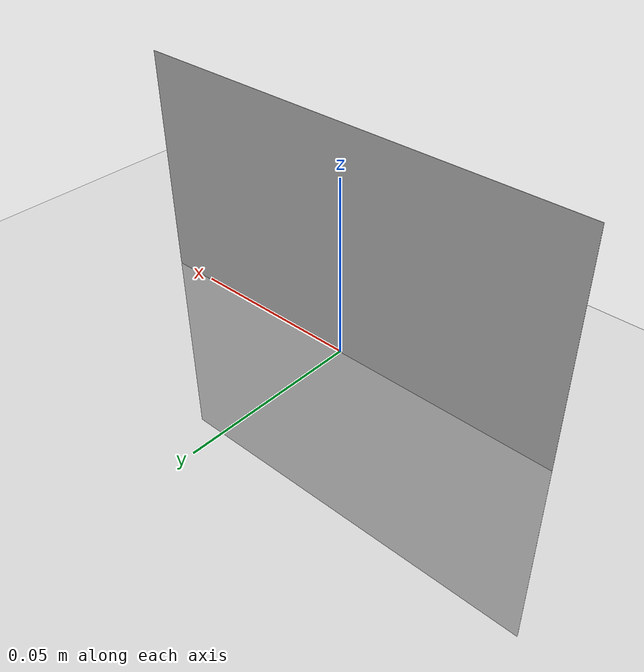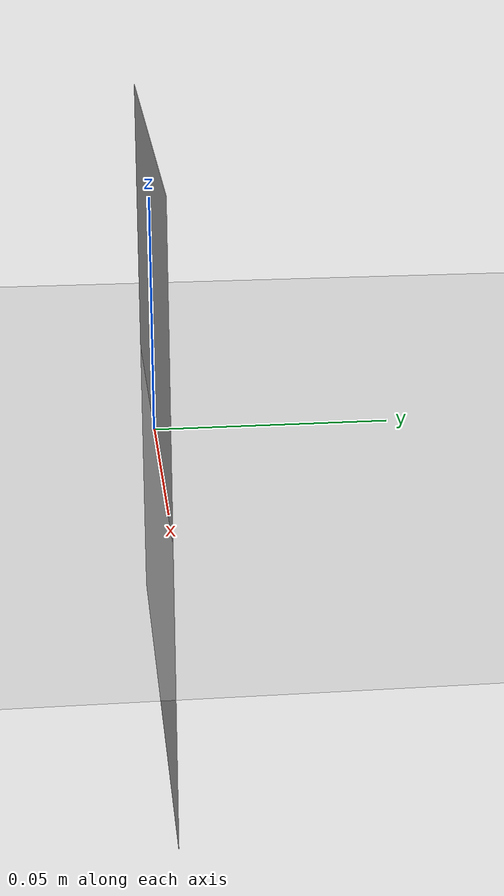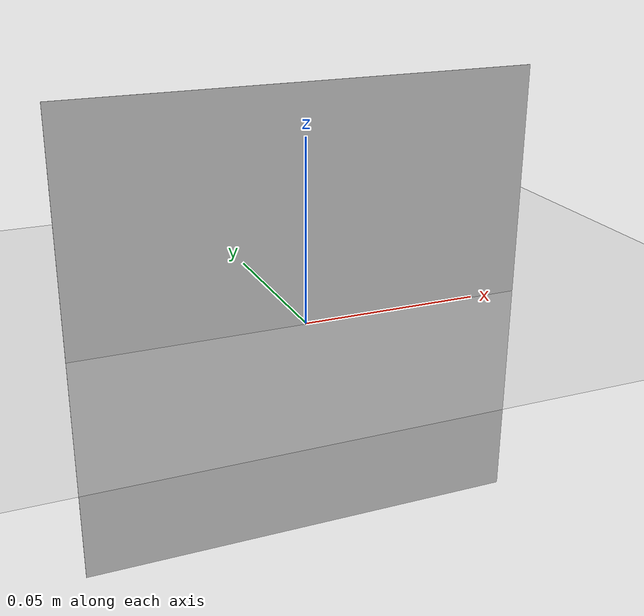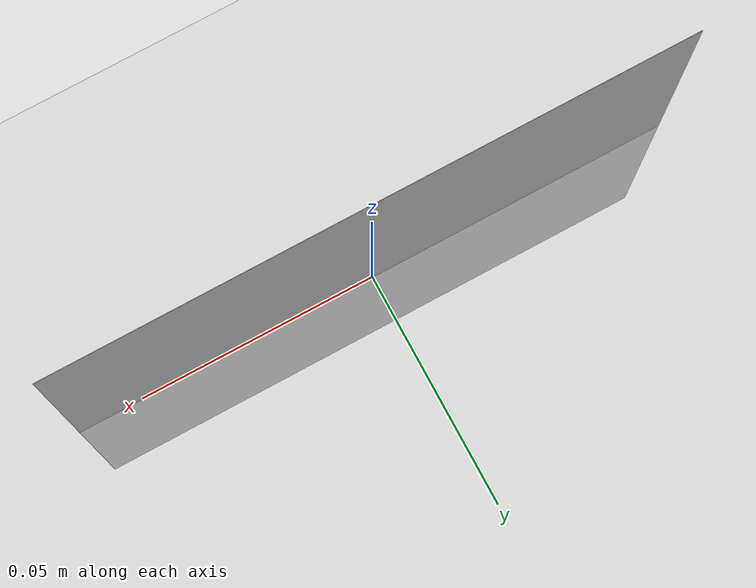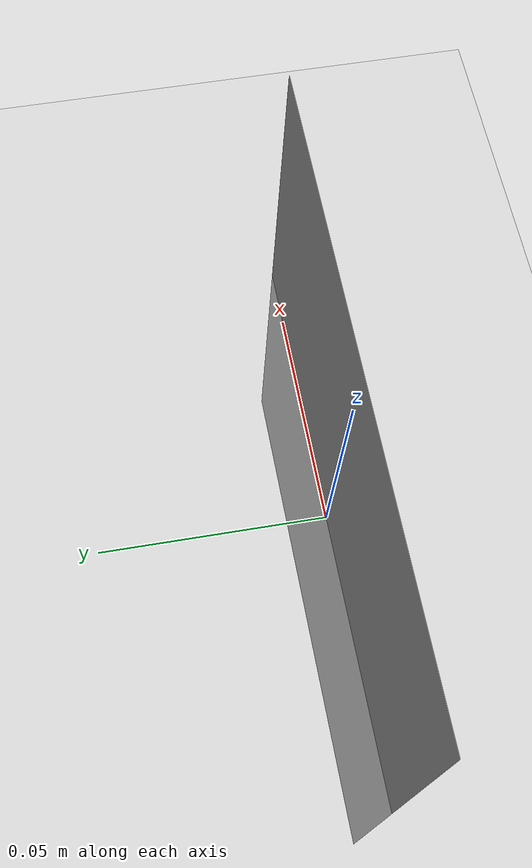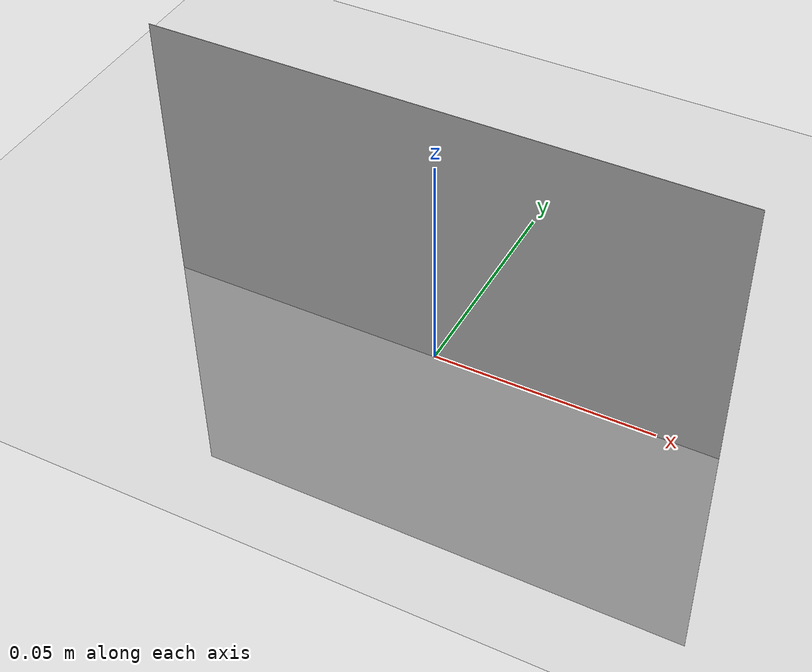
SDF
<sdf version="1.4">
 <world name="default">
  <light name="sun" type="directional">
   <pose>0 0 10 0 -0 0</pose>
   <diffuse>0.8 0.8 0.8 1</diffuse>
   <specular>0.2 0.2 0.2 1</specular>
   <attenuation>
    <range>1000</range>
    <constant>0.9</constant>
    <linear>0.01</linear>
    <quadratic>0.001</quadratic>
   </attenuation>
   <direction>-0.5 0.1 -0.9</direction>
  </light>
  <model name="ground_plane">
   <static>1</static>
   <link name="link">
    <collision name="collision">
     <geometry><plane><normal>0 0 1</normal><size>100 100</size></plane></geometry>
     <surface><friction><ode><mu>100</mu><mu2>50</mu2></ode></friction></surface>
    </collision>
    <visual name="visual">
     <cast_shadows>0</cast_shadows>
     <geometry><plane><normal>0 0 1</normal><size>100 100</size></plane></geometry>
     <material>
      <script><uri>file://media/materials/scripts/gazebo.material</uri><name>Gazebo/Grey</name></script>
     </material>
    </visual>
    <velocity_decay><linear>0</linear><angular>0</angular></velocity_decay>
   </link>
  </model>
  <physics type="ode">
   <max_step_size>0.001</max_step_size>
   <real_time_factor>1</real_time_factor>
   <real_time_update_rate>1000</real_time_update_rate>
   <gravity>0 0 -9.8</gravity>
  </physics>
  <scene><ambient>0.4 0.4 0.4 1</ambient><background>0.7 0.7 0.7 1</background><shadows>1</shadows></scene>
  <spherical_coordinates>
   <surface_model>EARTH_WGS84</surface_model>
   <latitude_deg>0</latitude_deg>
   <longitude_deg>0</longitude_deg>
   <elevation>0</elevation>
   <heading_deg>0</heading_deg>
  </spherical_coordinates>
  <model name="alvar_tag_0">
   <link name="link">
    <collision name="collision"><geometry><box><size>0.127 0.0001 0.127</size></box></geometry></collision>
    <visual name="visual">
     <geometry><box><size>0.127 0.0001 0.127</size></box></geometry>
     <material>
      <script>
       <uri>model://alvar_tag/materials/scripts</uri>
       <uri>model://alvar_tag/materials/textures</uri>
       <name>AlvarTag/Tag_0</name>
      </script>
     </material>
    </visual>
   </link>
   <static>1</static>
  </model>
  <model name="alvar_tag_1">
   <link name="link">
    <collision name="collision"><geometry><box><size>0.127 0.0001 0.127</size></box></geometry></collision>
    <visual name="visual">
     <geometry><box><size>0.127 0.0001 0.127</size></box></geometry>
     <material>
      <script>
       <uri>model://alvar_tag/materials/scripts</uri>
       <uri>model://alvar_tag/materials/textures</uri>
       <name>AlvarTag/Tag_1</name>
      </script>
     </material>
    </visual>
   </link>
   <static>1</static>
  </model>
  <model name="alvar_tag_2">
   <link name="link">
    <collision name="collision"><geometry><box><size>0.127 0.0001 0.127</size></box></geometry></collision>
    <visual name="visual">
     <geometry><box><size>0.127 0.0001 0.127</size></box></geometry>
     <material>
      <script>
       <uri>model://alvar_tag/materials/scripts</uri>
       <uri>model://alvar_tag/materials/textures</uri>
       <name>AlvarTag/Tag_2</name>
      </script>
     </material>
    </visual>
   </link>
   <static>1</static>
  </model>
  <model name="8th_floor">
   <link name="link">
    <inertial>
     <mass>1</mass>
     <inertia><ixx>1</ixx><ixy>0</ixy><ixz>0</ixz><iyy>1</iyy><iyz>0</iyz><izz>1</izz></inertia>
    </inertial>
    <collision name="collision"><geometry><mesh><uri>model://map_8th_floor.stl</uri></mesh></geometry></collision>
    <visual name="visual">
     <geometry><mesh><uri>model://map_8th_floor.stl</uri></mesh></geometry>
     <material>
      <script><uri>file://media/materials/scripts/gazebo.material</uri><name>Gazebo/Grey</name></script>
     </material>
    </visual>
    <velocity_decay><linear>0</linear><angular>0</angular></velocity_decay>
   </link>
   <static>1</static>
  </model>
 </world>
</sdf>
